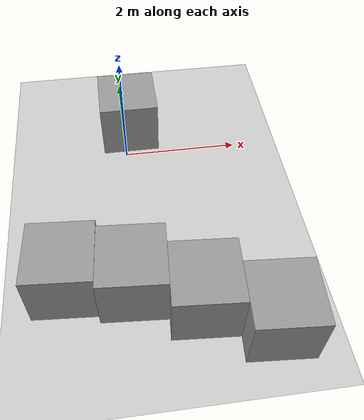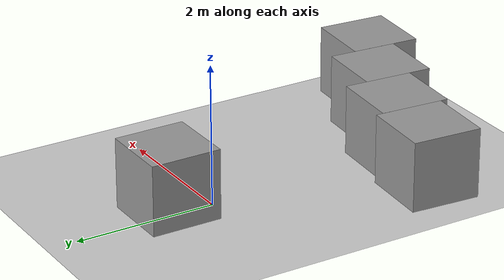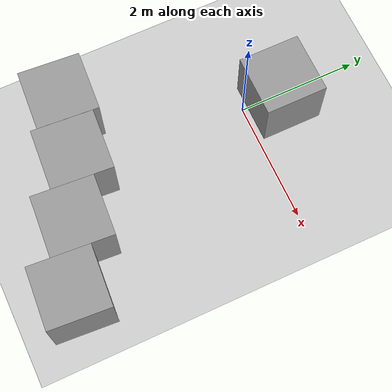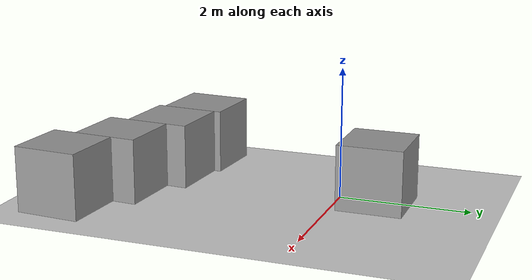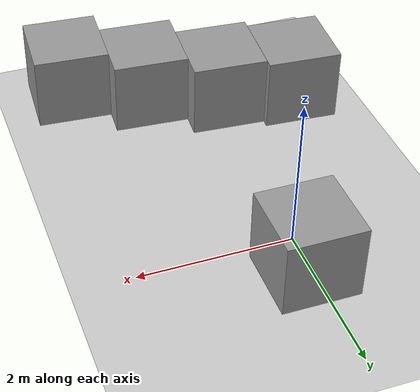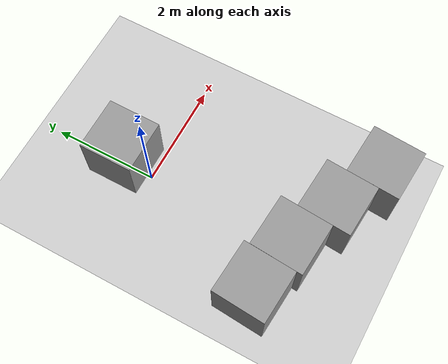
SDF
<sdf version="1.7">
 <world name="default">
  <plugin name="gazebo_occupancy_map" filename="libgazebo_2Dmap_plugin.so">
   <map_resolution>0.0025</map_resolution>
   <map_height>0.05</map_height>
   <map_size_x>10</map_size_x>
   <map_size_y>10</map_size_y>
   <init_robot_x>0</init_robot_x>
   <init_robot_y>0</init_robot_y>
  </plugin>
  <light name="sun" type="directional">
   <pose>0 0 10 0 -0 0</pose>
   <diffuse>0.8 0.8 0.8 1</diffuse>
   <specular>0.2 0.2 0.2 1</specular>
   <attenuation>
    <range>1000</range>
    <constant>0.9</constant>
    <linear>0.01</linear>
    <quadratic>0.001</quadratic>
   </attenuation>
   <direction>-0.5 0.1 -0.9</direction>
   <spot><inner_angle>0</inner_angle><outer_angle>0</outer_angle><falloff>0</falloff></spot>
  </light>
  <model name="ground_plane">
   <static>1</static>
   <link name="link">
    <collision name="collision">
     <geometry><plane><normal>0 0 1</normal><size>100 100</size></plane></geometry>
     <surface>
      <contact><collide_bitmask>65535</collide_bitmask></contact>
      <friction><ode><mu>100</mu><mu2>50</mu2></ode></friction>
     </surface>
    </collision>
    <visual name="visual">
     <cast_shadows>0</cast_shadows>
     <geometry><plane><normal>0 0 1</normal><size>100 100</size></plane></geometry>
     <material>
      <script><uri>file://media/materials/scripts/gazebo.material</uri><name>Gazebo/Grey</name></script>
     </material>
    </visual>
   </link>
  </model>
  <gravity>0 0 -9.8</gravity>
  <magnetic_field>6e-06 2.3e-05 -4.2e-05</magnetic_field>
  <atmosphere type="adiabatic"/>
  <physics type="ode">
   <max_step_size>0.001</max_step_size>
   <real_time_factor>1</real_time_factor>
   <real_time_update_rate>1000</real_time_update_rate>
  </physics>
  <scene><ambient>0.4 0.4 0.4 1</ambient><background>0.7 0.7 0.7 1</background><shadows>1</shadows></scene>
  <spherical_coordinates>
   <surface_model>EARTH_WGS84</surface_model>
   <latitude_deg>0</latitude_deg>
   <longitude_deg>0</longitude_deg>
   <elevation>0</elevation>
   <heading_deg>0</heading_deg>
  </spherical_coordinates>
  <model name="unit_box">
   <pose>0.10324 0.596632 0.499995 0 1e-05 0</pose>
   <link name="link">
    <inertial>
     <mass>1</mass>
     <inertia>
      <ixx>0.166667</ixx>
      <ixy>0</ixy>
      <ixz>0</ixz>
      <iyy>0.166667</iyy>
      <iyz>0</iyz>
      <izz>0.166667</izz>
     </inertia>
    </inertial>
    <collision name="collision"><geometry><box><size>1 1 1</size></box></geometry></collision>
    <visual name="visual">
     <geometry><box><size>1 1 1</size></box></geometry>
     <material>
      <script><name>Gazebo/Grey</name><uri>file://media/materials/scripts/gazebo.material</uri></script>
     </material>
    </visual>
   </link>
  </model>
  <model name="unit_box_0">
   <pose>-1.09867 -2.66477 0.5 -0 -0 -0.068818</pose>
   <link name="link">
    <inertial>
     <mass>1</mass>
     <inertia>
      <ixx>0.166667</ixx>
      <ixy>0</ixy>
      <ixz>0</ixz>
      <iyy>0.166667</iyy>
      <iyz>0</iyz>
      <izz>0.166667</izz>
     </inertia>
    </inertial>
    <collision name="collision"><geometry><box><size>1 1 1</size></box></geometry></collision>
    <visual name="visual">
     <geometry><box><size>1 1 1</size></box></geometry>
     <material>
      <script><name>Gazebo/Grey</name><uri>file://media/materials/scripts/gazebo.material</uri></script>
     </material>
    </visual>
   </link>
  </model>
  <model name="unit_box_1">
   <pose>-0.107619 -2.83837 0.5 0 0 -0.070156</pose>
   <link name="link">
    <inertial>
     <mass>1</mass>
     <inertia>
      <ixx>0.166667</ixx>
      <ixy>0</ixy>
      <ixz>0</ixz>
      <iyy>0.166667</iyy>
      <iyz>0</iyz>
      <izz>0.166667</izz>
     </inertia>
    </inertial>
    <collision name="collision"><geometry><box><size>1 1 1</size></box></geometry></collision>
    <visual name="visual">
     <geometry><box><size>1 1 1</size></box></geometry>
     <material>
      <script><name>Gazebo/Grey</name><uri>file://media/materials/scripts/gazebo.material</uri></script>
     </material>
    </visual>
   </link>
  </model>
  <model name="unit_box_2">
   <pose>0.867368 -3.22984 0.499712 7e-06 -0 -0.070302</pose>
   <link name="link">
    <inertial>
     <mass>1</mass>
     <inertia>
      <ixx>0.166667</ixx>
      <ixy>0</ixy>
      <ixz>0</ixz>
      <iyy>0.166667</iyy>
      <iyz>0</iyz>
      <izz>0.166667</izz>
     </inertia>
    </inertial>
    <collision name="collision"><geometry><box><size>1 1 1</size></box></geometry></collision>
    <visual name="visual">
     <geometry><box><size>1 1 1</size></box></geometry>
     <material>
      <script><name>Gazebo/Grey</name><uri>file://media/materials/scripts/gazebo.material</uri></script>
     </material>
    </visual>
   </link>
  </model>
  <model name="unit_box_3">
   <pose>1.83832 -3.67787 0.5 -0 -0 -0.070385</pose>
   <link name="link">
    <inertial>
     <mass>1</mass>
     <inertia>
      <ixx>0.166667</ixx>
      <ixy>0</ixy>
      <ixz>0</ixz>
      <iyy>0.166667</iyy>
      <iyz>0</iyz>
      <izz>0.166667</izz>
     </inertia>
    </inertial>
    <collision name="collision"><geometry><box><size>1 1 1</size></box></geometry></collision>
    <visual name="visual">
     <geometry><box><size>1 1 1</size></box></geometry>
     <material>
      <script><name>Gazebo/Grey</name><uri>file://media/materials/scripts/gazebo.material</uri></script>
     </material>
    </visual>
   </link>
  </model>
 </world>
</sdf>
